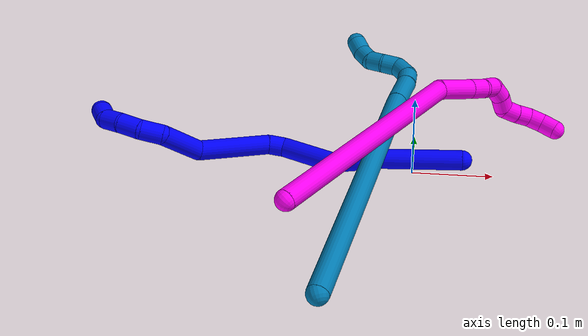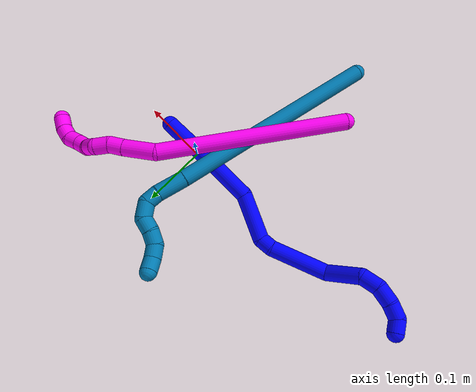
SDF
<sdf version="1.7">
 <world name="default">
  <model name="photoneo_s_sensor">
   <static>1</static>
   <pose>0 0 2 1.57079 1.57079 3.14159</pose>
   <link name="link">
    <inertial><mass>0.1</mass></inertial>
    <sensor name="sensor" type="depth">
     <update_rate>30</update_rate>
     <camera>
      <horizontal_fov>1.22</horizontal_fov>
      <image><width>1920</width><height>1200</height><format>B8G8R8</format></image>
      <clip><near>0.1</near><far>4</far></clip>
      <depth_camera><output>points</output></depth_camera>
     </camera>
     <plugin name="camera_plugin" filename="libgazebo_ros_depth_camera.so">
      <baseline>0.2</baseline>
      <alwaysOn>1</alwaysOn>
      <updateRate>0.0</updateRate>
      <cameraName>camera_ir</cameraName>
      <imageTopicName>/camera/color/image_raw</imageTopicName>
      <cameraInfoTopicName>/camera/color/camera_info</cameraInfoTopicName>
      <depthImageTopicName>/camera/depth/image_raw</depthImageTopicName>
      <depthImageCameraInfoTopicName>/camera/depth/camera_info</depthImageCameraInfoTopicName>
      <pointCloudTopicName>/camera/depth/points</pointCloudTopicName>
      <frameName>fr_optical</frameName>
      <pointCloudCutoff>0.1</pointCloudCutoff>
      <pointCloudCutoffMax>2.0</pointCloudCutoffMax>
      <distortionK1>0</distortionK1>
      <distortionK2>0</distortionK2>
      <distortionK3>0</distortionK3>
      <distortionT1>0</distortionT1>
      <distortionT2>0</distortionT2>
      <CxPrime>0</CxPrime>
      <Cx>0</Cx>
      <Cy>0</Cy>
      <focalLength>0</focalLength>
      <hackBaseline>0</hackBaseline>
     </plugin>
    </sensor>
   </link>
  </model>
  <model name="bin">
   <static>1</static>
   <link name="bottom">
    <collision name="collision-bottom">
     <pose>0 0 -0.01 0 -0 0</pose>
     <geometry><box><size>0.8 0.6 0.02</size></box></geometry>
     <surface>
      <friction><ode><mu>100</mu><mu2>100</mu2></ode></friction>
      <contact><collide_bitmask>65535</collide_bitmask></contact>
     </surface>
    </collision>
   </link>
   <link name="west_wall">
    <collision name="collision-west_wall">
     <pose>-0.41 0 0.1 0 -0 0</pose>
     <geometry><box><size>0.02 0.6 0.2</size></box></geometry>
     <surface>
      <friction><ode><mu>100</mu><mu2>100</mu2></ode></friction>
      <contact><collide_bitmask>65535</collide_bitmask></contact>
     </surface>
    </collision>
   </link>
   <link name="east_wall">
    <collision name="collision-east_wall">
     <pose>0.41 0 0.1 0 -0 0</pose>
     <geometry><box><size>0.02 0.6 0.2</size></box></geometry>
     <surface>
      <friction><ode><mu>100</mu><mu2>100</mu2></ode></friction>
      <contact><collide_bitmask>65535</collide_bitmask></contact>
     </surface>
    </collision>
   </link>
   <link name="south_wall">
    <collision name="collision-south_wall">
     <pose>0 -0.31 0.1 0 -0 0</pose>
     <geometry><box><size>0.8 0.02 0.2</size></box></geometry>
     <surface>
      <friction><ode><mu>100</mu><mu2>100</mu2></ode></friction>
      <contact><collide_bitmask>65535</collide_bitmask></contact>
     </surface>
    </collision>
   </link>
   <link name="north_wall">
    <collision name="collision-north_wall">
     <pose>0 0.31 0.1 0 -0 0</pose>
     <geometry><box><size>0.8 0.02 0.2</size></box></geometry>
     <surface>
      <friction><ode><mu>100</mu><mu2>100</mu2></ode></friction>
      <contact><collide_bitmask>65535</collide_bitmask></contact>
     </surface>
    </collision>
   </link>
  </model>
  <model name="1">
   <static>0</static>
   <link name="1">
    <collision name="collision-cylinder-e_1_1_4">
     <pose>-0.004887 0.000646 0.049521 -0.013041 -0.09836 0.000642</pose>
     <geometry><cylinder><radius>0.0125</radius><length>0.099532</length></cylinder></geometry>
     <surface>
      <friction><ode><mu>1.16</mu><mu2>1.16</mu2><slip1>0</slip1><slip2>0</slip2></ode></friction>
      <contact><ode><kp>1e+06</kp><kd>1</kd><max_vel>0</max_vel><min_depth>0.001</min_depth></ode></contact>
     </surface>
    </collision>
    <visual name="visual-cylinder-e_1_1_4">
     <pose>-0.004887 0.000646 0.049521 -0.013041 -0.09836 0.000642</pose>
     <geometry><cylinder><radius>0.0125</radius><length>0.099532</length></cylinder></geometry>
     <material><ambient>0 0 1 1</ambient></material>
    </visual>
    <collision name="collision-cylinder-e_2_4_5">
     <pose>-0.009027 0.001603 0.129462 -0.010241 0.024556 -0.000126</pose>
     <geometry><cylinder><radius>0.0125</radius><length>0.06086</length></cylinder></geometry>
     <surface>
      <friction><ode><mu>1.16</mu><mu2>1.16</mu2><slip1>0</slip1><slip2>0</slip2></ode></friction>
      <contact><ode><kp>1e+06</kp><kd>1</kd><max_vel>0</max_vel><min_depth>0.001</min_depth></ode></contact>
     </surface>
    </collision>
    <visual name="visual-cylinder-e_2_4_5">
     <pose>-0.009027 0.001603 0.129462 -0.010241 0.024556 -0.000126</pose>
     <geometry><cylinder><radius>0.0125</radius><length>0.06086</length></cylinder></geometry>
     <material><ambient>0 0 1 1</ambient></material>
    </visual>
    <collision name="collision-cylinder-e_3_5_6">
     <pose>-0.011532 -0.01402 0.192831 0.450454 -0.088618 -0.020316</pose>
     <geometry><cylinder><radius>0.0125</radius><length>0.07349</length></cylinder></geometry>
     <surface>
      <friction><ode><mu>1.16</mu><mu2>1.16</mu2><slip1>0</slip1><slip2>0</slip2></ode></friction>
      <contact><ode><kp>1e+06</kp><kd>1</kd><max_vel>0</max_vel><min_depth>0.001</min_depth></ode></contact>
     </surface>
    </collision>
    <visual name="visual-cylinder-e_3_5_6">
     <pose>-0.011532 -0.01402 0.192831 0.450454 -0.088618 -0.020316</pose>
     <geometry><cylinder><radius>0.0125</radius><length>0.07349</length></cylinder></geometry>
     <material><ambient>0 0 1 1</ambient></material>
    </visual>
    <collision name="collision-cylinder-e_4_6_7">
     <pose>-0.017962 -0.029518 0.235701 -0.044067 -0.309741 0.006881</pose>
     <geometry><cylinder><radius>0.0125</radius><length>0.020852</length></cylinder></geometry>
     <surface>
      <friction><ode><mu>1.16</mu><mu2>1.16</mu2><slip1>0</slip1><slip2>0</slip2></ode></friction>
      <contact><ode><kp>1e+06</kp><kd>1</kd><max_vel>0</max_vel><min_depth>0.001</min_depth></ode></contact>
     </surface>
    </collision>
    <visual name="visual-cylinder-e_4_6_7">
     <pose>-0.017962 -0.029518 0.235701 -0.044067 -0.309741 0.006881</pose>
     <geometry><cylinder><radius>0.0125</radius><length>0.020852</length></cylinder></geometry>
     <material><ambient>0 0 1 1</ambient></material>
    </visual>
    <collision name="collision-cylinder-e_5_7_8">
     <pose>-0.029243 -0.014005 0.287217 -0.347709 -0.181143 0.031898</pose>
     <geometry><cylinder><radius>0.0125</radius><length>0.089959</length></cylinder></geometry>
     <surface>
      <friction><ode><mu>1.16</mu><mu2>1.16</mu2><slip1>0</slip1><slip2>0</slip2></ode></friction>
      <contact><ode><kp>1e+06</kp><kd>1</kd><max_vel>0</max_vel><min_depth>0.001</min_depth></ode></contact>
     </surface>
    </collision>
    <visual name="visual-cylinder-e_5_7_8">
     <pose>-0.029243 -0.014005 0.287217 -0.347709 -0.181143 0.031898</pose>
     <geometry><cylinder><radius>0.0125</radius><length>0.089959</length></cylinder></geometry>
     <material><ambient>0 0 1 1</ambient></material>
    </visual>
    <collision name="collision-cylinder-e_6_8_9">
     <pose>-0.058105 0.013491 0.344331 -0.674996 -0.807111 0.29747</pose>
     <geometry><cylinder><radius>0.0125</radius><length>0.057479</length></cylinder></geometry>
     <surface>
      <friction><ode><mu>1.16</mu><mu2>1.16</mu2><slip1>0</slip1><slip2>0</slip2></ode></friction>
      <contact><ode><kp>1e+06</kp><kd>1</kd><max_vel>0</max_vel><min_depth>0.001</min_depth></ode></contact>
     </surface>
    </collision>
    <visual name="visual-cylinder-e_6_8_9">
     <pose>-0.058105 0.013491 0.344331 -0.674996 -0.807111 0.29747</pose>
     <geometry><cylinder><radius>0.0125</radius><length>0.057479</length></cylinder></geometry>
     <material><ambient>0 0 1 1</ambient></material>
    </visual>
    <collision name="collision-cylinder-e_7_9_10">
     <pose>-0.084666 0.027513 0.37218 -0.129082 -0.436574 0.028671</pose>
     <geometry><cylinder><radius>0.0125</radius><length>0.027446</length></cylinder></geometry>
     <surface>
      <friction><ode><mu>1.16</mu><mu2>1.16</mu2><slip1>0</slip1><slip2>0</slip2></ode></friction>
      <contact><ode><kp>1e+06</kp><kd>1</kd><max_vel>0</max_vel><min_depth>0.001</min_depth></ode></contact>
     </surface>
    </collision>
    <visual name="visual-cylinder-e_7_9_10">
     <pose>-0.084666 0.027513 0.37218 -0.129082 -0.436574 0.028671</pose>
     <geometry><cylinder><radius>0.0125</radius><length>0.027446</length></cylinder></geometry>
     <material><ambient>0 0 1 1</ambient></material>
    </visual>
    <collision name="collision-cylinder-e_8_10_11">
     <pose>-0.093983 0.025922 0.396784 0.254423 -0.270437 -0.034798</pose>
     <geometry><cylinder><radius>0.0125</radius><length>0.026314</length></cylinder></geometry>
     <surface>
      <friction><ode><mu>1.16</mu><mu2>1.16</mu2><slip1>0</slip1><slip2>0</slip2></ode></friction>
      <contact><ode><kp>1e+06</kp><kd>1</kd><max_vel>0</max_vel><min_depth>0.001</min_depth></ode></contact>
     </surface>
    </collision>
    <visual name="visual-cylinder-e_8_10_11">
     <pose>-0.093983 0.025922 0.396784 0.254423 -0.270437 -0.034798</pose>
     <geometry><cylinder><radius>0.0125</radius><length>0.026314</length></cylinder></geometry>
     <material><ambient>0 0 1 1</ambient></material>
    </visual>
    <collision name="collision-cylinder-e_9_11_12">
     <pose>-0.098393 0.018154 0.419913 0.398981 -0.07582 -0.015336</pose>
     <geometry><cylinder><radius>0.0125</radius><length>0.023635</length></cylinder></geometry>
     <surface>
      <friction><ode><mu>1.16</mu><mu2>1.16</mu2><slip1>0</slip1><slip2>0</slip2></ode></friction>
      <contact><ode><kp>1e+06</kp><kd>1</kd><max_vel>0</max_vel><min_depth>0.001</min_depth></ode></contact>
     </surface>
    </collision>
    <visual name="visual-cylinder-e_9_11_12">
     <pose>-0.098393 0.018154 0.419913 0.398981 -0.07582 -0.015336</pose>
     <geometry><cylinder><radius>0.0125</radius><length>0.023635</length></cylinder></geometry>
     <material><ambient>0 0 1 1</ambient></material>
    </visual>
    <collision name="collision-cylinder-e_10_12_2">
     <pose>-0.100404 0.00484 0.435948 1.03577 -0.109408 -0.062378</pose>
     <geometry><cylinder><radius>0.0125</radius><length>0.020432</length></cylinder></geometry>
     <surface>
      <friction><ode><mu>1.16</mu><mu2>1.16</mu2><slip1>0</slip1><slip2>0</slip2></ode></friction>
      <contact><ode><kp>1e+06</kp><kd>1</kd><max_vel>0</max_vel><min_depth>0.001</min_depth></ode></contact>
     </surface>
    </collision>
    <visual name="visual-cylinder-e_10_12_2">
     <pose>-0.100404 0.00484 0.435948 1.03577 -0.109408 -0.062378</pose>
     <geometry><cylinder><radius>0.0125</radius><length>0.020432</length></cylinder></geometry>
     <material><ambient>0 0 1 1</ambient></material>
    </visual>
    <collision name="collision-sphere-2">
     <pose>-0.101519 -0.003896 0.441126 0 -0 0</pose>
     <geometry><sphere><radius>0.0125</radius></sphere></geometry>
     <surface>
      <friction><ode><mu>1.16</mu><mu2>1.16</mu2><slip1>0</slip1><slip2>0</slip2></ode></friction>
      <contact><ode><kp>1e+06</kp><kd>1</kd><max_vel>0</max_vel><min_depth>0.001</min_depth></ode></contact>
     </surface>
    </collision>
    <visual name="visual-sphere-2">
     <pose>-0.101519 -0.003896 0.441126 0 -0 0</pose>
     <geometry><sphere><radius>0.0125</radius></sphere></geometry>
     <material><ambient>0 0 1 1</ambient></material>
    </visual>
    <collision name="collision-sphere-12">
     <pose>-0.099288 0.013576 0.43077 0 -0 0</pose>
     <geometry><sphere><radius>0.0125</radius></sphere></geometry>
     <surface>
      <friction><ode><mu>1.16</mu><mu2>1.16</mu2><slip1>0</slip1><slip2>0</slip2></ode></friction>
      <contact><ode><kp>1e+06</kp><kd>1</kd><max_vel>0</max_vel><min_depth>0.001</min_depth></ode></contact>
     </surface>
    </collision>
    <visual name="visual-sphere-12">
     <pose>-0.099288 0.013576 0.43077 0 -0 0</pose>
     <geometry><sphere><radius>0.0125</radius></sphere></geometry>
     <material><ambient>0 0 1 1</ambient></material>
    </visual>
    <collision name="collision-sphere-11">
     <pose>-0.097498 0.022731 0.409055 0 -0 0</pose>
     <geometry><sphere><radius>0.0125</radius></sphere></geometry>
     <surface>
      <friction><ode><mu>1.16</mu><mu2>1.16</mu2><slip1>0</slip1><slip2>0</slip2></ode></friction>
      <contact><ode><kp>1e+06</kp><kd>1</kd><max_vel>0</max_vel><min_depth>0.001</min_depth></ode></contact>
     </surface>
    </collision>
    <visual name="visual-sphere-11">
     <pose>-0.097498 0.022731 0.409055 0 -0 0</pose>
     <geometry><sphere><radius>0.0125</radius></sphere></geometry>
     <material><ambient>0 0 1 1</ambient></material>
    </visual>
    <collision name="collision-sphere-10">
     <pose>-0.090468 0.029113 0.384513 0 -0 0</pose>
     <geometry><sphere><radius>0.0125</radius></sphere></geometry>
     <surface>
      <friction><ode><mu>1.16</mu><mu2>1.16</mu2><slip1>0</slip1><slip2>0</slip2></ode></friction>
      <contact><ode><kp>1e+06</kp><kd>1</kd><max_vel>0</max_vel><min_depth>0.001</min_depth></ode></contact>
     </surface>
    </collision>
    <visual name="visual-sphere-10">
     <pose>-0.090468 0.029113 0.384513 0 -0 0</pose>
     <geometry><sphere><radius>0.0125</radius></sphere></geometry>
     <material><ambient>0 0 1 1</ambient></material>
    </visual>
    <collision name="collision-sphere-9">
     <pose>-0.078863 0.025912 0.359848 0 -0 0</pose>
     <geometry><sphere><radius>0.0125</radius></sphere></geometry>
     <surface>
      <friction><ode><mu>1.16</mu><mu2>1.16</mu2><slip1>0</slip1><slip2>0</slip2></ode></friction>
      <contact><ode><kp>1e+06</kp><kd>1</kd><max_vel>0</max_vel><min_depth>0.001</min_depth></ode></contact>
     </surface>
    </collision>
    <visual name="visual-sphere-9">
     <pose>-0.078863 0.025912 0.359848 0 -0 0</pose>
     <geometry><sphere><radius>0.0125</radius></sphere></geometry>
     <material><ambient>0 0 1 1</ambient></material>
    </visual>
    <collision name="collision-sphere-4">
     <pose>-0.009774 0.001292 0.099042 0 -0 0</pose>
     <geometry><sphere><radius>0.0125</radius></sphere></geometry>
     <surface>
      <friction><ode><mu>1.16</mu><mu2>1.16</mu2><slip1>0</slip1><slip2>0</slip2></ode></friction>
      <contact><ode><kp>1e+06</kp><kd>1</kd><max_vel>0</max_vel><min_depth>0.001</min_depth></ode></contact>
     </surface>
    </collision>
    <visual name="visual-sphere-4">
     <pose>-0.009774 0.001292 0.099042 0 -0 0</pose>
     <geometry><sphere><radius>0.0125</radius></sphere></geometry>
     <material><ambient>0 0 1 1</ambient></material>
    </visual>
    <collision name="collision-sphere-1">
     <geometry><sphere><radius>0.0125</radius></sphere></geometry>
     <surface>
      <friction><ode><mu>1.16</mu><mu2>1.16</mu2><slip1>0</slip1><slip2>0</slip2></ode></friction>
      <contact><ode><kp>1e+06</kp><kd>1</kd><max_vel>0</max_vel><min_depth>0.001</min_depth></ode></contact>
     </surface>
    </collision>
    <visual name="visual-sphere-1">
     <geometry><sphere><radius>0.0125</radius></sphere></geometry>
     <material><ambient>0 0 1 1</ambient></material>
    </visual>
    <collision name="collision-sphere-8">
     <pose>-0.037346 0.001071 0.328813 0 -0 0</pose>
     <geometry><sphere><radius>0.0125</radius></sphere></geometry>
     <surface>
      <friction><ode><mu>1.16</mu><mu2>1.16</mu2><slip1>0</slip1><slip2>0</slip2></ode></friction>
      <contact><ode><kp>1e+06</kp><kd>1</kd><max_vel>0</max_vel><min_depth>0.001</min_depth></ode></contact>
     </surface>
    </collision>
    <visual name="visual-sphere-8">
     <pose>-0.037346 0.001071 0.328813 0 -0 0</pose>
     <geometry><sphere><radius>0.0125</radius></sphere></geometry>
     <material><ambient>0 0 1 1</ambient></material>
    </visual>
    <collision name="collision-sphere-5">
     <pose>-0.00828 0.001915 0.159881 0 -0 0</pose>
     <geometry><sphere><radius>0.0125</radius></sphere></geometry>
     <surface>
      <friction><ode><mu>1.16</mu><mu2>1.16</mu2><slip1>0</slip1><slip2>0</slip2></ode></friction>
      <contact><ode><kp>1e+06</kp><kd>1</kd><max_vel>0</max_vel><min_depth>0.001</min_depth></ode></contact>
     </surface>
    </collision>
    <visual name="visual-sphere-5">
     <pose>-0.00828 0.001915 0.159881 0 -0 0</pose>
     <geometry><sphere><radius>0.0125</radius></sphere></geometry>
     <material><ambient>0 0 1 1</ambient></material>
    </visual>
    <collision name="collision-sphere-6">
     <pose>-0.014784 -0.029955 0.225781 0 -0 0</pose>
     <geometry><sphere><radius>0.0125</radius></sphere></geometry>
     <surface>
      <friction><ode><mu>1.16</mu><mu2>1.16</mu2><slip1>0</slip1><slip2>0</slip2></ode></friction>
      <contact><ode><kp>1e+06</kp><kd>1</kd><max_vel>0</max_vel><min_depth>0.001</min_depth></ode></contact>
     </surface>
    </collision>
    <visual name="visual-sphere-6">
     <pose>-0.014784 -0.029955 0.225781 0 -0 0</pose>
     <geometry><sphere><radius>0.0125</radius></sphere></geometry>
     <material><ambient>0 0 1 1</ambient></material>
    </visual>
    <collision name="collision-sphere-7">
     <pose>-0.02114 -0.029081 0.245621 0 -0 0</pose>
     <geometry><sphere><radius>0.0125</radius></sphere></geometry>
     <surface>
      <friction><ode><mu>1.16</mu><mu2>1.16</mu2><slip1>0</slip1><slip2>0</slip2></ode></friction>
      <contact><ode><kp>1e+06</kp><kd>1</kd><max_vel>0</max_vel><min_depth>0.001</min_depth></ode></contact>
     </surface>
    </collision>
    <visual name="visual-sphere-7">
     <pose>-0.02114 -0.029081 0.245621 0 -0 0</pose>
     <geometry><sphere><radius>0.0125</radius></sphere></geometry>
     <material><ambient>0 0 1 1</ambient></material>
    </visual>
    <inertial>
     <pose>-0.034804 -6e-06 0.234023 0 -0 0</pose>
     <mass>0.5</mass>
     <inertia><ixx>0.000225</ixx><ixy>0</ixy><ixz>0</ixz><iyy>0.00023</iyy><iyz>0</iyz><izz>6e-05</izz></inertia>
    </inertial>
   </link>
   <pose>0.060907 -0.001342 0.022086 -2.37637 1.41749 0.787911</pose>
  </model>
  <model name="9">
   <static>0</static>
   <link name="9">
    <collision name="collision-cylinder-e_1_1_4">
     <pose>0.031649 0.102875 0.125918 -0.685023 0.192238 -0.06873</pose>
     <geometry><cylinder><radius>0.0125</radius><length>0.331302</length></cylinder></geometry>
     <surface>
      <friction><ode><mu>1.16</mu><mu2>1.16</mu2><slip1>0</slip1><slip2>0</slip2></ode></friction>
      <contact><ode><kp>1e+06</kp><kd>1</kd><max_vel>0</max_vel><min_depth>0.001</min_depth></ode></contact>
     </surface>
    </collision>
    <visual name="visual-cylinder-e_1_1_4">
     <pose>0.031649 0.102875 0.125918 -0.685023 0.192238 -0.06873</pose>
     <geometry><cylinder><radius>0.0125</radius><length>0.331302</length></cylinder></geometry>
     <material><ambient>0 0.490196 0.709804 1</ambient></material>
    </visual>
    <collision name="collision-cylinder-e_2_4_5">
     <pose>0.067862 0.220074 0.26748 -0.74133 0.211963 -0.082638</pose>
     <geometry><cylinder><radius>0.0125</radius><length>0.043394</length></cylinder></geometry>
     <surface>
      <friction><ode><mu>1.16</mu><mu2>1.16</mu2><slip1>0</slip1><slip2>0</slip2></ode></friction>
      <contact><ode><kp>1e+06</kp><kd>1</kd><max_vel>0</max_vel><min_depth>0.001</min_depth></ode></contact>
     </surface>
    </collision>
    <visual name="visual-cylinder-e_2_4_5">
     <pose>0.067862 0.220074 0.26748 -0.74133 0.211963 -0.082638</pose>
     <geometry><cylinder><radius>0.0125</radius><length>0.043394</length></cylinder></geometry>
     <material><ambient>0 0.490196 0.709804 1</ambient></material>
    </visual>
    <collision name="collision-cylinder-e_3_5_6">
     <pose>0.073094 0.240335 0.291219 -0.6329 0.066395 -0.021748</pose>
     <geometry><cylinder><radius>0.0125</radius><length>0.020119</length></cylinder></geometry>
     <surface>
      <friction><ode><mu>1.16</mu><mu2>1.16</mu2><slip1>0</slip1><slip2>0</slip2></ode></friction>
      <contact><ode><kp>1e+06</kp><kd>1</kd><max_vel>0</max_vel><min_depth>0.001</min_depth></ode></contact>
     </surface>
    </collision>
    <visual name="visual-cylinder-e_3_5_6">
     <pose>0.073094 0.240335 0.291219 -0.6329 0.066395 -0.021748</pose>
     <geometry><cylinder><radius>0.0125</radius><length>0.020119</length></cylinder></geometry>
     <material><ambient>0 0.490196 0.709804 1</ambient></material>
    </visual>
    <collision name="collision-cylinder-e_4_6_7">
     <pose>0.068388 0.248282 0.309794 -0.189456 -0.466447 0.045132</pose>
     <geometry><cylinder><radius>0.0125</radius><length>0.023898</length></cylinder></geometry>
     <surface>
      <friction><ode><mu>1.16</mu><mu2>1.16</mu2><slip1>0</slip1><slip2>0</slip2></ode></friction>
      <contact><ode><kp>1e+06</kp><kd>1</kd><max_vel>0</max_vel><min_depth>0.001</min_depth></ode></contact>
     </surface>
    </collision>
    <visual name="visual-cylinder-e_4_6_7">
     <pose>0.068388 0.248282 0.309794 -0.189456 -0.466447 0.045132</pose>
     <geometry><cylinder><radius>0.0125</radius><length>0.023898</length></cylinder></geometry>
     <material><ambient>0 0.490196 0.709804 1</ambient></material>
    </visual>
    <collision name="collision-cylinder-e_5_7_8">
     <pose>0.055302 0.24654 0.325992 0.580747 -0.8454 -0.267225</pose>
     <geometry><cylinder><radius>0.0125</radius><length>0.020614</length></cylinder></geometry>
     <surface>
      <friction><ode><mu>1.16</mu><mu2>1.16</mu2><slip1>0</slip1><slip2>0</slip2></ode></friction>
      <contact><ode><kp>1e+06</kp><kd>1</kd><max_vel>0</max_vel><min_depth>0.001</min_depth></ode></contact>
     </surface>
    </collision>
    <visual name="visual-cylinder-e_5_7_8">
     <pose>0.055302 0.24654 0.325992 0.580747 -0.8454 -0.267225</pose>
     <geometry><cylinder><radius>0.0125</radius><length>0.020614</length></cylinder></geometry>
     <material><ambient>0 0.490196 0.709804 1</ambient></material>
    </visual>
    <collision name="collision-cylinder-e_6_8_9">
     <pose>0.039762 0.24151 0.338014 0.200045 -0.882928 -0.094781</pose>
     <geometry><cylinder><radius>0.0125</radius><length>0.020264</length></cylinder></geometry>
     <surface>
      <friction><ode><mu>1.16</mu><mu2>1.16</mu2><slip1>0</slip1><slip2>0</slip2></ode></friction>
      <contact><ode><kp>1e+06</kp><kd>1</kd><max_vel>0</max_vel><min_depth>0.001</min_depth></ode></contact>
     </surface>
    </collision>
    <visual name="visual-cylinder-e_6_8_9">
     <pose>0.039762 0.24151 0.338014 0.200045 -0.882928 -0.094781</pose>
     <geometry><cylinder><radius>0.0125</radius><length>0.020264</length></cylinder></geometry>
     <material><ambient>0 0.490196 0.709804 1</ambient></material>
    </visual>
    <collision name="collision-cylinder-e_7_9_10">
     <pose>0.027656 0.241514 0.353477 -0.139177 -0.433234 0.030676</pose>
     <geometry><cylinder><radius>0.0125</radius><length>0.020379</length></cylinder></geometry>
     <surface>
      <friction><ode><mu>1.16</mu><mu2>1.16</mu2><slip1>0</slip1><slip2>0</slip2></ode></friction>
      <contact><ode><kp>1e+06</kp><kd>1</kd><max_vel>0</max_vel><min_depth>0.001</min_depth></ode></contact>
     </surface>
    </collision>
    <visual name="visual-cylinder-e_7_9_10">
     <pose>0.027656 0.241514 0.353477 -0.139177 -0.433234 0.030676</pose>
     <geometry><cylinder><radius>0.0125</radius><length>0.020379</length></cylinder></geometry>
     <material><ambient>0 0.490196 0.709804 1</ambient></material>
    </visual>
    <collision name="collision-cylinder-e_8_10_2">
     <pose>0.021655 0.243058 0.372498 -0.026398 -0.172907 0.002288</pose>
     <geometry><cylinder><radius>0.0125</radius><length>0.020029</length></cylinder></geometry>
     <surface>
      <friction><ode><mu>1.16</mu><mu2>1.16</mu2><slip1>0</slip1><slip2>0</slip2></ode></friction>
      <contact><ode><kp>1e+06</kp><kd>1</kd><max_vel>0</max_vel><min_depth>0.001</min_depth></ode></contact>
     </surface>
    </collision>
    <visual name="visual-cylinder-e_8_10_2">
     <pose>0.021655 0.243058 0.372498 -0.026398 -0.172907 0.002288</pose>
     <geometry><cylinder><radius>0.0125</radius><length>0.020029</length></cylinder></geometry>
     <material><ambient>0 0.490196 0.709804 1</ambient></material>
    </visual>
    <collision name="collision-sphere-2">
     <pose>0.019932 0.243318 0.382359 0 -0 0</pose>
     <geometry><sphere><radius>0.0125</radius></sphere></geometry>
     <surface>
      <friction><ode><mu>1.16</mu><mu2>1.16</mu2><slip1>0</slip1><slip2>0</slip2></ode></friction>
      <contact><ode><kp>1e+06</kp><kd>1</kd><max_vel>0</max_vel><min_depth>0.001</min_depth></ode></contact>
     </surface>
    </collision>
    <visual name="visual-sphere-2">
     <pose>0.019932 0.243318 0.382359 0 -0 0</pose>
     <geometry><sphere><radius>0.0125</radius></sphere></geometry>
     <material><ambient>0 0.490196 0.709804 1</ambient></material>
    </visual>
    <collision name="collision-sphere-10">
     <pose>0.023378 0.242797 0.362636 0 -0 0</pose>
     <geometry><sphere><radius>0.0125</radius></sphere></geometry>
     <surface>
      <friction><ode><mu>1.16</mu><mu2>1.16</mu2><slip1>0</slip1><slip2>0</slip2></ode></friction>
      <contact><ode><kp>1e+06</kp><kd>1</kd><max_vel>0</max_vel><min_depth>0.001</min_depth></ode></contact>
     </surface>
    </collision>
    <visual name="visual-sphere-10">
     <pose>0.023378 0.242797 0.362636 0 -0 0</pose>
     <geometry><sphere><radius>0.0125</radius></sphere></geometry>
     <material><ambient>0 0.490196 0.709804 1</ambient></material>
    </visual>
    <collision name="collision-sphere-9">
     <pose>0.031933 0.240232 0.344319 0 -0 0</pose>
     <geometry><sphere><radius>0.0125</radius></sphere></geometry>
     <surface>
      <friction><ode><mu>1.16</mu><mu2>1.16</mu2><slip1>0</slip1><slip2>0</slip2></ode></friction>
      <contact><ode><kp>1e+06</kp><kd>1</kd><max_vel>0</max_vel><min_depth>0.001</min_depth></ode></contact>
     </surface>
    </collision>
    <visual name="visual-sphere-9">
     <pose>0.031933 0.240232 0.344319 0 -0 0</pose>
     <geometry><sphere><radius>0.0125</radius></sphere></geometry>
     <material><ambient>0 0.490196 0.709804 1</ambient></material>
    </visual>
    <collision name="collision-sphere-4">
     <pose>0.063297 0.20575 0.251835 0 -0 0</pose>
     <geometry><sphere><radius>0.0125</radius></sphere></geometry>
     <surface>
      <friction><ode><mu>1.16</mu><mu2>1.16</mu2><slip1>0</slip1><slip2>0</slip2></ode></friction>
      <contact><ode><kp>1e+06</kp><kd>1</kd><max_vel>0</max_vel><min_depth>0.001</min_depth></ode></contact>
     </surface>
    </collision>
    <visual name="visual-sphere-4">
     <pose>0.063297 0.20575 0.251835 0 -0 0</pose>
     <geometry><sphere><radius>0.0125</radius></sphere></geometry>
     <material><ambient>0 0.490196 0.709804 1</ambient></material>
    </visual>
    <collision name="collision-sphere-1">
     <geometry><sphere><radius>0.0125</radius></sphere></geometry>
     <surface>
      <friction><ode><mu>1.16</mu><mu2>1.16</mu2><slip1>0</slip1><slip2>0</slip2></ode></friction>
      <contact><ode><kp>1e+06</kp><kd>1</kd><max_vel>0</max_vel><min_depth>0.001</min_depth></ode></contact>
     </surface>
    </collision>
    <visual name="visual-sphere-1">
     <geometry><sphere><radius>0.0125</radius></sphere></geometry>
     <material><ambient>0 0.490196 0.709804 1</ambient></material>
    </visual>
    <collision name="collision-sphere-8">
     <pose>0.04759 0.242788 0.331709 0 -0 0</pose>
     <geometry><sphere><radius>0.0125</radius></sphere></geometry>
     <surface>
      <friction><ode><mu>1.16</mu><mu2>1.16</mu2><slip1>0</slip1><slip2>0</slip2></ode></friction>
      <contact><ode><kp>1e+06</kp><kd>1</kd><max_vel>0</max_vel><min_depth>0.001</min_depth></ode></contact>
     </surface>
    </collision>
    <visual name="visual-sphere-8">
     <pose>0.04759 0.242788 0.331709 0 -0 0</pose>
     <geometry><sphere><radius>0.0125</radius></sphere></geometry>
     <material><ambient>0 0.490196 0.709804 1</ambient></material>
    </visual>
    <collision name="collision-sphere-5">
     <pose>0.072427 0.234398 0.283125 0 -0 0</pose>
     <geometry><sphere><radius>0.0125</radius></sphere></geometry>
     <surface>
      <friction><ode><mu>1.16</mu><mu2>1.16</mu2><slip1>0</slip1><slip2>0</slip2></ode></friction>
      <contact><ode><kp>1e+06</kp><kd>1</kd><max_vel>0</max_vel><min_depth>0.001</min_depth></ode></contact>
     </surface>
    </collision>
    <visual name="visual-sphere-5">
     <pose>0.072427 0.234398 0.283125 0 -0 0</pose>
     <geometry><sphere><radius>0.0125</radius></sphere></geometry>
     <material><ambient>0 0.490196 0.709804 1</ambient></material>
    </visual>
    <collision name="collision-sphere-6">
     <pose>0.073761 0.246272 0.299312 0 -0 0</pose>
     <geometry><sphere><radius>0.0125</radius></sphere></geometry>
     <surface>
      <friction><ode><mu>1.16</mu><mu2>1.16</mu2><slip1>0</slip1><slip2>0</slip2></ode></friction>
      <contact><ode><kp>1e+06</kp><kd>1</kd><max_vel>0</max_vel><min_depth>0.001</min_depth></ode></contact>
     </surface>
    </collision>
    <visual name="visual-sphere-6">
     <pose>0.073761 0.246272 0.299312 0 -0 0</pose>
     <geometry><sphere><radius>0.0125</radius></sphere></geometry>
     <material><ambient>0 0.490196 0.709804 1</ambient></material>
    </visual>
    <collision name="collision-sphere-7">
     <pose>0.063014 0.250291 0.320275 0 -0 0</pose>
     <geometry><sphere><radius>0.0125</radius></sphere></geometry>
     <surface>
      <friction><ode><mu>1.16</mu><mu2>1.16</mu2><slip1>0</slip1><slip2>0</slip2></ode></friction>
      <contact><ode><kp>1e+06</kp><kd>1</kd><max_vel>0</max_vel><min_depth>0.001</min_depth></ode></contact>
     </surface>
    </collision>
    <visual name="visual-sphere-7">
     <pose>0.063014 0.250291 0.320275 0 -0 0</pose>
     <geometry><sphere><radius>0.0125</radius></sphere></geometry>
     <material><ambient>0 0.490196 0.709804 1</ambient></material>
    </visual>
    <inertial>
     <pose>0.038956 0.148336 0.189641 0 -0 0</pose>
     <mass>0.5</mass>
     <inertia>
      <ixx>0.002792</ixx>
      <ixy>0</ixy>
      <ixz>0</ixz>
      <iyy>0.002205</iyy>
      <iyz>0</iyz>
      <izz>-0.002446</izz>
     </inertia>
    </inertial>
   </link>
   <pose>-0.084082 -0.273562 0.012234 -0.776011 -0.601024 -0.088611</pose>
  </model>
  <model name="10">
   <static>0</static>
   <link name="10">
    <collision name="collision-cylinder-e_1_1_4">
     <pose>0.141735 0.011746 -0.007189 -2.11999 1.47394 -2.03521</pose>
     <geometry><cylinder><radius>0.0125</radius><length>0.284805</length></cylinder></geometry>
     <surface>
      <friction><ode><mu>1.16</mu><mu2>1.16</mu2><slip1>0</slip1><slip2>0</slip2></ode></friction>
      <contact><ode><kp>1e+06</kp><kd>1</kd><max_vel>0</max_vel><min_depth>0.001</min_depth></ode></contact>
     </surface>
    </collision>
    <visual name="visual-cylinder-e_1_1_4">
     <pose>0.141735 0.011746 -0.007189 -2.11999 1.47394 -2.03521</pose>
     <geometry><cylinder><radius>0.0125</radius><length>0.284805</length></cylinder></geometry>
     <material><ambient>1 0 0.964706 1</ambient></material>
    </visual>
    <collision name="collision-cylinder-e_2_4_5">
     <pose>0.306073 0.022927 -0.004584 0.057616 1.16134 0.037809</pose>
     <geometry><cylinder><radius>0.0125</radius><length>0.049278</length></cylinder></geometry>
     <surface>
      <friction><ode><mu>1.16</mu><mu2>1.16</mu2><slip1>0</slip1><slip2>0</slip2></ode></friction>
      <contact><ode><kp>1e+06</kp><kd>1</kd><max_vel>0</max_vel><min_depth>0.001</min_depth></ode></contact>
     </surface>
    </collision>
    <visual name="visual-cylinder-e_2_4_5">
     <pose>0.306073 0.022927 -0.004584 0.057616 1.16134 0.037809</pose>
     <geometry><cylinder><radius>0.0125</radius><length>0.049278</length></cylinder></geometry>
     <material><ambient>1 0 0.964706 1</ambient></material>
    </visual>
    <collision name="collision-cylinder-e_3_5_6">
     <pose>0.338737 0.022843 0.009946 -0.101033 1.12884 -0.063999</pose>
     <geometry><cylinder><radius>0.0125</radius><length>0.022263</length></cylinder></geometry>
     <surface>
      <friction><ode><mu>1.16</mu><mu2>1.16</mu2><slip1>0</slip1><slip2>0</slip2></ode></friction>
      <contact><ode><kp>1e+06</kp><kd>1</kd><max_vel>0</max_vel><min_depth>0.001</min_depth></ode></contact>
     </surface>
    </collision>
    <visual name="visual-cylinder-e_3_5_6">
     <pose>0.338737 0.022843 0.009946 -0.101033 1.12884 -0.063999</pose>
     <geometry><cylinder><radius>0.0125</radius><length>0.022263</length></cylinder></geometry>
     <material><ambient>1 0 0.964706 1</ambient></material>
    </visual>
    <collision name="collision-cylinder-e_4_6_7">
     <pose>0.359615 0.021598 0.01653 0.750851 1.34119 0.605997</pose>
     <geometry><cylinder><radius>0.0125</radius><length>0.022214</length></cylinder></geometry>
     <surface>
      <friction><ode><mu>1.16</mu><mu2>1.16</mu2><slip1>0</slip1><slip2>0</slip2></ode></friction>
      <contact><ode><kp>1e+06</kp><kd>1</kd><max_vel>0</max_vel><min_depth>0.001</min_depth></ode></contact>
     </surface>
    </collision>
    <visual name="visual-cylinder-e_4_6_7">
     <pose>0.359615 0.021598 0.01653 0.750851 1.34119 0.605997</pose>
     <geometry><cylinder><radius>0.0125</radius><length>0.022214</length></cylinder></geometry>
     <material><ambient>1 0 0.964706 1</ambient></material>
    </visual>
    <collision name="collision-cylinder-e_5_7_8">
     <pose>0.376614 0.013616 0.024402 0.804525 0.618697 0.270306</pose>
     <geometry><cylinder><radius>0.0125</radius><length>0.021324</length></cylinder></geometry>
     <surface>
      <friction><ode><mu>1.16</mu><mu2>1.16</mu2><slip1>0</slip1><slip2>0</slip2></ode></friction>
      <contact><ode><kp>1e+06</kp><kd>1</kd><max_vel>0</max_vel><min_depth>0.001</min_depth></ode></contact>
     </surface>
    </collision>
    <visual name="visual-cylinder-e_5_7_8">
     <pose>0.376614 0.013616 0.024402 0.804525 0.618697 0.270306</pose>
     <geometry><cylinder><radius>0.0125</radius><length>0.021324</length></cylinder></geometry>
     <material><ambient>1 0 0.964706 1</ambient></material>
    </visual>
    <collision name="collision-cylinder-e_6_8_9">
     <pose>0.385676 -8.8e-05 0.0365 0.8864 0.290994 0.138893</pose>
     <geometry><cylinder><radius>0.0125</radius><length>0.020062</length></cylinder></geometry>
     <surface>
      <friction><ode><mu>1.16</mu><mu2>1.16</mu2><slip1>0</slip1><slip2>0</slip2></ode></friction>
      <contact><ode><kp>1e+06</kp><kd>1</kd><max_vel>0</max_vel><min_depth>0.001</min_depth></ode></contact>
     </surface>
    </collision>
    <visual name="visual-cylinder-e_6_8_9">
     <pose>0.385676 -8.8e-05 0.0365 0.8864 0.290994 0.138893</pose>
     <geometry><cylinder><radius>0.0125</radius><length>0.020062</length></cylinder></geometry>
     <material><ambient>1 0 0.964706 1</ambient></material>
    </visual>
    <collision name="collision-cylinder-e_7_9_10">
     <pose>0.395238 -0.00867 0.049937 0.153155 0.731399 0.058745</pose>
     <geometry><cylinder><radius>0.0125</radius><length>0.020017</length></cylinder></geometry>
     <surface>
      <friction><ode><mu>1.16</mu><mu2>1.16</mu2><slip1>0</slip1><slip2>0</slip2></ode></friction>
      <contact><ode><kp>1e+06</kp><kd>1</kd><max_vel>0</max_vel><min_depth>0.001</min_depth></ode></contact>
     </surface>
    </collision>
    <visual name="visual-cylinder-e_7_9_10">
     <pose>0.395238 -0.00867 0.049937 0.153155 0.731399 0.058745</pose>
     <geometry><cylinder><radius>0.0125</radius><length>0.020017</length></cylinder></geometry>
     <material><ambient>1 0 0.964706 1</ambient></material>
    </visual>
    <collision name="collision-cylinder-e_8_10_11">
     <pose>0.40938 -0.010365 0.063964 0.083638 0.839588 0.037347</pose>
     <geometry><cylinder><radius>0.0125</radius><length>0.020034</length></cylinder></geometry>
     <surface>
      <friction><ode><mu>1.16</mu><mu2>1.16</mu2><slip1>0</slip1><slip2>0</slip2></ode></friction>
      <contact><ode><kp>1e+06</kp><kd>1</kd><max_vel>0</max_vel><min_depth>0.001</min_depth></ode></contact>
     </surface>
    </collision>
    <visual name="visual-cylinder-e_8_10_11">
     <pose>0.40938 -0.010365 0.063964 0.083638 0.839588 0.037347</pose>
     <geometry><cylinder><radius>0.0125</radius><length>0.020034</length></cylinder></geometry>
     <material><ambient>1 0 0.964706 1</ambient></material>
    </visual>
    <collision name="collision-cylinder-e_9_11_12">
     <pose>0.420681 -0.009768 0.079789 -0.12552 0.394709 -0.02513</pose>
     <geometry><cylinder><radius>0.0125</radius><length>0.020001</length></cylinder></geometry>
     <surface>
      <friction><ode><mu>1.16</mu><mu2>1.16</mu2><slip1>0</slip1><slip2>0</slip2></ode></friction>
      <contact><ode><kp>1e+06</kp><kd>1</kd><max_vel>0</max_vel><min_depth>0.001</min_depth></ode></contact>
     </surface>
    </collision>
    <visual name="visual-cylinder-e_9_11_12">
     <pose>0.420681 -0.009768 0.079789 -0.12552 0.394709 -0.02513</pose>
     <geometry><cylinder><radius>0.0125</radius><length>0.020001</length></cylinder></geometry>
     <material><ambient>1 0 0.964706 1</ambient></material>
    </visual>
    <collision name="collision-cylinder-e_10_12_2">
     <pose>0.425623 -0.006421 0.098643 -0.2223 0.109805 -0.012267</pose>
     <geometry><cylinder><radius>0.0125</radius><length>0.020001</length></cylinder></geometry>
     <surface>
      <friction><ode><mu>1.16</mu><mu2>1.16</mu2><slip1>0</slip1><slip2>0</slip2></ode></friction>
      <contact><ode><kp>1e+06</kp><kd>1</kd><max_vel>0</max_vel><min_depth>0.001</min_depth></ode></contact>
     </surface>
    </collision>
    <visual name="visual-cylinder-e_10_12_2">
     <pose>0.425623 -0.006421 0.098643 -0.2223 0.109805 -0.012267</pose>
     <geometry><cylinder><radius>0.0125</radius><length>0.020001</length></cylinder></geometry>
     <material><ambient>1 0 0.964706 1</ambient></material>
    </visual>
    <collision name="collision-sphere-2">
     <pose>0.426719 -0.004229 0.108339 0 -0 0</pose>
     <geometry><sphere><radius>0.0125</radius></sphere></geometry>
     <surface>
      <friction><ode><mu>1.16</mu><mu2>1.16</mu2><slip1>0</slip1><slip2>0</slip2></ode></friction>
      <contact><ode><kp>1e+06</kp><kd>1</kd><max_vel>0</max_vel><min_depth>0.001</min_depth></ode></contact>
     </surface>
    </collision>
    <visual name="visual-sphere-2">
     <pose>0.426719 -0.004229 0.108339 0 -0 0</pose>
     <geometry><sphere><radius>0.0125</radius></sphere></geometry>
     <material><ambient>1 0 0.964706 1</ambient></material>
    </visual>
    <collision name="collision-sphere-12">
     <pose>0.424527 -0.008612 0.088948 0 -0 0</pose>
     <geometry><sphere><radius>0.0125</radius></sphere></geometry>
     <surface>
      <friction><ode><mu>1.16</mu><mu2>1.16</mu2><slip1>0</slip1><slip2>0</slip2></ode></friction>
      <contact><ode><kp>1e+06</kp><kd>1</kd><max_vel>0</max_vel><min_depth>0.001</min_depth></ode></contact>
     </surface>
    </collision>
    <visual name="visual-sphere-12">
     <pose>0.424527 -0.008612 0.088948 0 -0 0</pose>
     <geometry><sphere><radius>0.0125</radius></sphere></geometry>
     <material><ambient>1 0 0.964706 1</ambient></material>
    </visual>
    <collision name="collision-sphere-11">
     <pose>0.416836 -0.010924 0.07063 0 -0 0</pose>
     <geometry><sphere><radius>0.0125</radius></sphere></geometry>
     <surface>
      <friction><ode><mu>1.16</mu><mu2>1.16</mu2><slip1>0</slip1><slip2>0</slip2></ode></friction>
      <contact><ode><kp>1e+06</kp><kd>1</kd><max_vel>0</max_vel><min_depth>0.001</min_depth></ode></contact>
     </surface>
    </collision>
    <visual name="visual-sphere-11">
     <pose>0.416836 -0.010924 0.07063 0 -0 0</pose>
     <geometry><sphere><radius>0.0125</radius></sphere></geometry>
     <material><ambient>1 0 0.964706 1</ambient></material>
    </visual>
    <collision name="collision-sphere-10">
     <pose>0.401923 -0.009806 0.057299 0 -0 0</pose>
     <geometry><sphere><radius>0.0125</radius></sphere></geometry>
     <surface>
      <friction><ode><mu>1.16</mu><mu2>1.16</mu2><slip1>0</slip1><slip2>0</slip2></ode></friction>
      <contact><ode><kp>1e+06</kp><kd>1</kd><max_vel>0</max_vel><min_depth>0.001</min_depth></ode></contact>
     </surface>
    </collision>
    <visual name="visual-sphere-10">
     <pose>0.401923 -0.009806 0.057299 0 -0 0</pose>
     <geometry><sphere><radius>0.0125</radius></sphere></geometry>
     <material><ambient>1 0 0.964706 1</ambient></material>
    </visual>
    <collision name="collision-sphere-9">
     <pose>0.388554 -0.007533 0.042575 0 -0 0</pose>
     <geometry><sphere><radius>0.0125</radius></sphere></geometry>
     <surface>
      <friction><ode><mu>1.16</mu><mu2>1.16</mu2><slip1>0</slip1><slip2>0</slip2></ode></friction>
      <contact><ode><kp>1e+06</kp><kd>1</kd><max_vel>0</max_vel><min_depth>0.001</min_depth></ode></contact>
     </surface>
    </collision>
    <visual name="visual-sphere-9">
     <pose>0.388554 -0.007533 0.042575 0 -0 0</pose>
     <geometry><sphere><radius>0.0125</radius></sphere></geometry>
     <material><ambient>1 0 0.964706 1</ambient></material>
    </visual>
    <collision name="collision-sphere-4">
     <pose>0.283471 0.023492 -0.014377 0 -0 0</pose>
     <geometry><sphere><radius>0.0125</radius></sphere></geometry>
     <surface>
      <friction><ode><mu>1.16</mu><mu2>1.16</mu2><slip1>0</slip1><slip2>0</slip2></ode></friction>
      <contact><ode><kp>1e+06</kp><kd>1</kd><max_vel>0</max_vel><min_depth>0.001</min_depth></ode></contact>
     </surface>
    </collision>
    <visual name="visual-sphere-4">
     <pose>0.283471 0.023492 -0.014377 0 -0 0</pose>
     <geometry><sphere><radius>0.0125</radius></sphere></geometry>
     <material><ambient>1 0 0.964706 1</ambient></material>
    </visual>
    <collision name="collision-sphere-1">
     <geometry><sphere><radius>0.0125</radius></sphere></geometry>
     <surface>
      <friction><ode><mu>1.16</mu><mu2>1.16</mu2><slip1>0</slip1><slip2>0</slip2></ode></friction>
      <contact><ode><kp>1e+06</kp><kd>1</kd><max_vel>0</max_vel><min_depth>0.001</min_depth></ode></contact>
     </surface>
    </collision>
    <visual name="visual-sphere-1">
     <geometry><sphere><radius>0.0125</radius></sphere></geometry>
     <material><ambient>1 0 0.964706 1</ambient></material>
    </visual>
    <collision name="collision-sphere-8">
     <pose>0.382798 0.007357 0.030425 0 -0 0</pose>
     <geometry><sphere><radius>0.0125</radius></sphere></geometry>
     <surface>
      <friction><ode><mu>1.16</mu><mu2>1.16</mu2><slip1>0</slip1><slip2>0</slip2></ode></friction>
      <contact><ode><kp>1e+06</kp><kd>1</kd><max_vel>0</max_vel><min_depth>0.001</min_depth></ode></contact>
     </surface>
    </collision>
    <visual name="visual-sphere-8">
     <pose>0.382798 0.007357 0.030425 0 -0 0</pose>
     <geometry><sphere><radius>0.0125</radius></sphere></geometry>
     <material><ambient>1 0 0.964706 1</ambient></material>
    </visual>
    <collision name="collision-sphere-5">
     <pose>0.328675 0.022362 0.005209 0 -0 0</pose>
     <geometry><sphere><radius>0.0125</radius></sphere></geometry>
     <surface>
      <friction><ode><mu>1.16</mu><mu2>1.16</mu2><slip1>0</slip1><slip2>0</slip2></ode></friction>
      <contact><ode><kp>1e+06</kp><kd>1</kd><max_vel>0</max_vel><min_depth>0.001</min_depth></ode></contact>
     </surface>
    </collision>
    <visual name="visual-sphere-5">
     <pose>0.328675 0.022362 0.005209 0 -0 0</pose>
     <geometry><sphere><radius>0.0125</radius></sphere></geometry>
     <material><ambient>1 0 0.964706 1</ambient></material>
    </visual>
    <collision name="collision-sphere-6">
     <pose>0.348799 0.023323 0.014682 0 -0 0</pose>
     <geometry><sphere><radius>0.0125</radius></sphere></geometry>
     <surface>
      <friction><ode><mu>1.16</mu><mu2>1.16</mu2><slip1>0</slip1><slip2>0</slip2></ode></friction>
      <contact><ode><kp>1e+06</kp><kd>1</kd><max_vel>0</max_vel><min_depth>0.001</min_depth></ode></contact>
     </surface>
    </collision>
    <visual name="visual-sphere-6">
     <pose>0.348799 0.023323 0.014682 0 -0 0</pose>
     <geometry><sphere><radius>0.0125</radius></sphere></geometry>
     <material><ambient>1 0 0.964706 1</ambient></material>
    </visual>
    <collision name="collision-sphere-7">
     <pose>0.37043 0.019874 0.018379 0 -0 0</pose>
     <geometry><sphere><radius>0.0125</radius></sphere></geometry>
     <surface>
      <friction><ode><mu>1.16</mu><mu2>1.16</mu2><slip1>0</slip1><slip2>0</slip2></ode></friction>
      <contact><ode><kp>1e+06</kp><kd>1</kd><max_vel>0</max_vel><min_depth>0.001</min_depth></ode></contact>
     </surface>
    </collision>
    <visual name="visual-sphere-7">
     <pose>0.37043 0.019874 0.018379 0 -0 0</pose>
     <geometry><sphere><radius>0.0125</radius></sphere></geometry>
     <material><ambient>1 0 0.964706 1</ambient></material>
    </visual>
    <inertial>
     <pose>0.239576 0.010094 0.010836 0 -0 0</pose>
     <mass>0.5</mass>
     <inertia>
      <ixx>-0.000204</ixx>
      <ixy>0</ixy>
      <ixz>0</ixz>
      <iyy>0.001779</iyy>
      <iyz>0</iyz>
      <izz>-0.002095</izz>
     </inertia>
    </inertial>
   </link>
   <pose>-0.128282 -0.187246 0.064087 2.06093 -0.011317 0.97563</pose>
  </model>
 </world>
</sdf>
